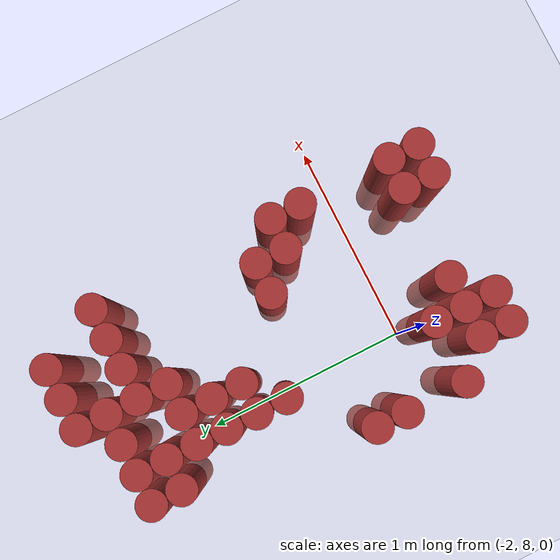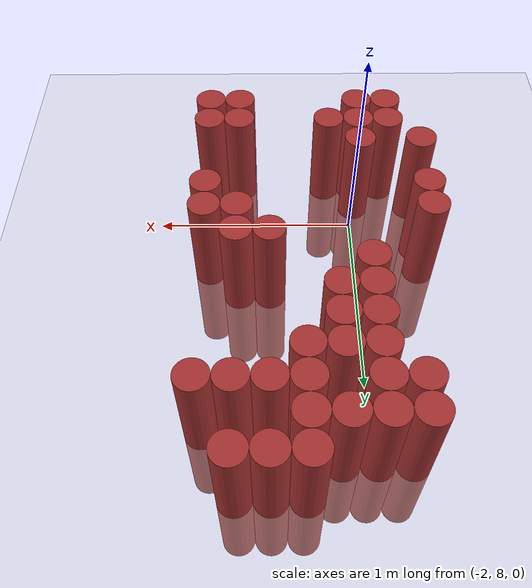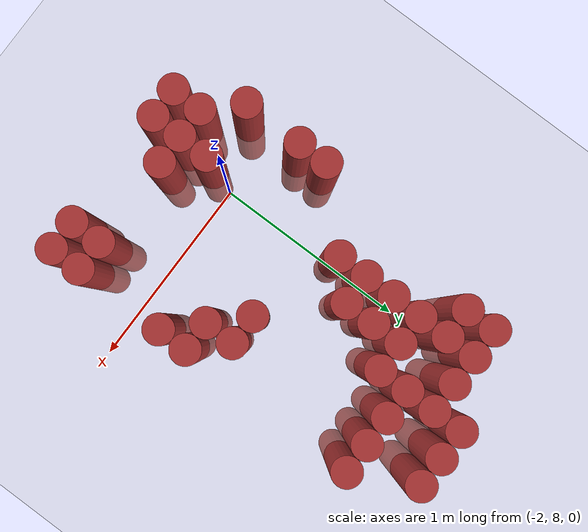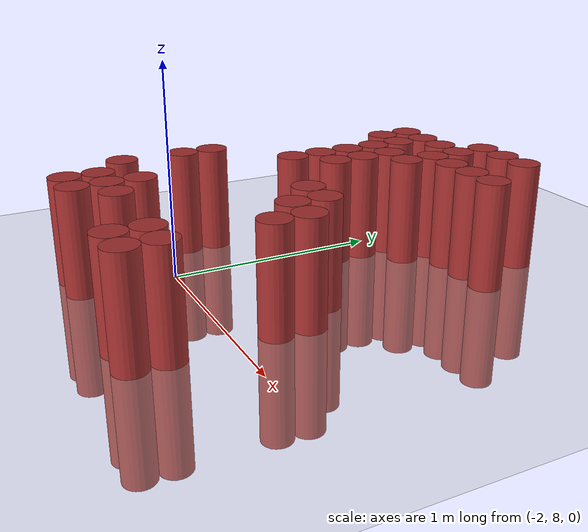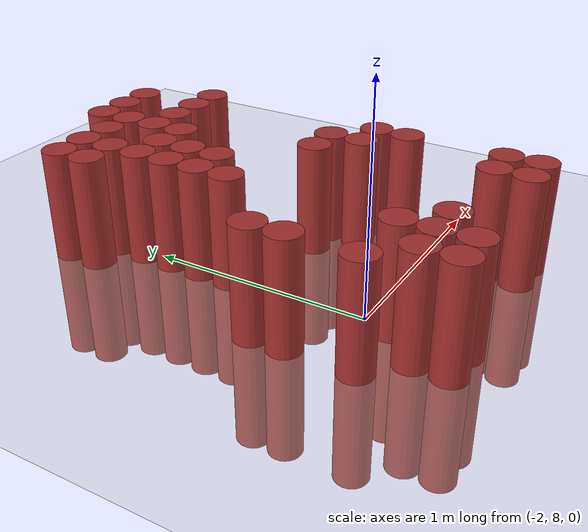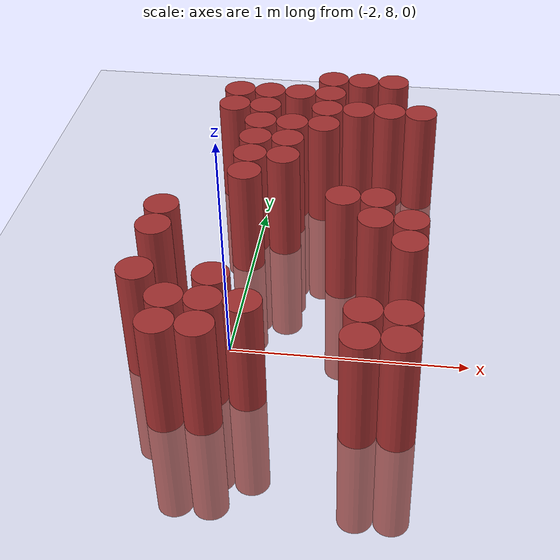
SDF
<sdf version="1.6">
 <world name="default">
  <model name="ground_plane">
   <static>1</static>
   <link name="link">
    <collision name="collision">
     <geometry><plane><normal>0 0 1</normal><size>100 100</size></plane></geometry>
     <surface><friction><ode><mu>100</mu><mu2>50</mu2></ode></friction></surface>
    </collision>
    <visual name="visual">
     <cast_shadows>0</cast_shadows>
     <geometry><plane><normal>0 0 1</normal><size>100 100</size></plane></geometry>
     <material>
      <script><uri>file://media/materials/scripts/gazebo.material</uri><name>Gazebo/Grey</name></script>
     </material>
    </visual>
   </link>
  </model>
  <model name="unit_cylinder_196">
   <static>1</static>
   <pose>-2.325000 7.875000 0.000000 0.000000 0.000000 0.000000</pose>
   <link name="link">
    <inertial>
     <mass>1</mass>
     <inertia><ixx>0.145833</ixx><ixy>0</ixy><ixz>0</ixz><iyy>0.145833</iyy><iyz>0</iyz><izz>0.125</izz></inertia>
    </inertial>
    <collision name="collision">
     <geometry><cylinder><radius>0.075000</radius><length>1</length></cylinder></geometry>
    </collision>
    <visual name="visual">
     <geometry><cylinder><radius>0.075000</radius><length>1</length></cylinder></geometry>
     <material>
      <ambient>0.648000 0.192000 0.192000 1</ambient>
      <diffuse>0.648000 0.192000 0.192000 1</diffuse>
     </material>
     <material>
      <script><name>Gazebo/Grey</name><uri>file://media/materials/scripts/gazebo.material</uri></script>
     </material>
    </visual>
    <sensor name="sensor_contact" type="contact"><contact><collision>collision</collision></contact></sensor>
   </link>
   <plugin filename="gz-sim-touchplugin-system" name="gz::sim::systems::TouchPlugin">
    <target>robot</target>
    <namespace>robot</namespace>
    <time>0.001</time>
    <enabled>true</enabled>
   </plugin>
  </model>
  <model name="unit_cylinder_197">
   <static>1</static>
   <pose>-2.325000 8.175000 0.000000 0.000000 0.000000 0.000000</pose>
   <link name="link">
    <inertial>
     <mass>1</mass>
     <inertia><ixx>0.145833</ixx><ixy>0</ixy><ixz>0</ixz><iyy>0.145833</iyy><iyz>0</iyz><izz>0.125</izz></inertia>
    </inertial>
    <collision name="collision">
     <geometry><cylinder><radius>0.075000</radius><length>1</length></cylinder></geometry>
    </collision>
    <visual name="visual">
     <geometry><cylinder><radius>0.075000</radius><length>1</length></cylinder></geometry>
     <material>
      <ambient>0.648000 0.192000 0.192000 1</ambient>
      <diffuse>0.648000 0.192000 0.192000 1</diffuse>
     </material>
     <material>
      <script><name>Gazebo/Grey</name><uri>file://media/materials/scripts/gazebo.material</uri></script>
     </material>
    </visual>
    <sensor name="sensor_contact" type="contact"><contact><collision>collision</collision></contact></sensor>
   </link>
   <plugin filename="gz-sim-touchplugin-system" name="gz::sim::systems::TouchPlugin">
    <target>robot</target>
    <namespace>robot</namespace>
    <time>0.001</time>
    <enabled>true</enabled>
   </plugin>
  </model>
  <model name="unit_cylinder_198">
   <static>1</static>
   <pose>-2.325000 8.325000 0.000000 0.000000 0.000000 0.000000</pose>
   <link name="link">
    <inertial>
     <mass>1</mass>
     <inertia><ixx>0.145833</ixx><ixy>0</ixy><ixz>0</ixz><iyy>0.145833</iyy><iyz>0</iyz><izz>0.125</izz></inertia>
    </inertial>
    <collision name="collision">
     <geometry><cylinder><radius>0.075000</radius><length>1</length></cylinder></geometry>
    </collision>
    <visual name="visual">
     <geometry><cylinder><radius>0.075000</radius><length>1</length></cylinder></geometry>
     <material>
      <ambient>0.648000 0.192000 0.192000 1</ambient>
      <diffuse>0.648000 0.192000 0.192000 1</diffuse>
     </material>
     <material>
      <script><name>Gazebo/Grey</name><uri>file://media/materials/scripts/gazebo.material</uri></script>
     </material>
    </visual>
    <sensor name="sensor_contact" type="contact"><contact><collision>collision</collision></contact></sensor>
   </link>
   <plugin filename="gz-sim-touchplugin-system" name="gz::sim::systems::TouchPlugin">
    <target>robot</target>
    <namespace>robot</namespace>
    <time>0.001</time>
    <enabled>true</enabled>
   </plugin>
  </model>
  <model name="unit_cylinder_204">
   <static>1</static>
   <pose>-2.175000 7.575000 0.000000 0.000000 0.000000 0.000000</pose>
   <link name="link">
    <inertial>
     <mass>1</mass>
     <inertia><ixx>0.145833</ixx><ixy>0</ixy><ixz>0</ixz><iyy>0.145833</iyy><iyz>0</iyz><izz>0.125</izz></inertia>
    </inertial>
    <collision name="collision">
     <geometry><cylinder><radius>0.075000</radius><length>1</length></cylinder></geometry>
    </collision>
    <visual name="visual">
     <geometry><cylinder><radius>0.075000</radius><length>1</length></cylinder></geometry>
     <material>
      <ambient>0.648000 0.192000 0.192000 1</ambient>
      <diffuse>0.648000 0.192000 0.192000 1</diffuse>
     </material>
     <material>
      <script><name>Gazebo/Grey</name><uri>file://media/materials/scripts/gazebo.material</uri></script>
     </material>
    </visual>
    <sensor name="sensor_contact" type="contact"><contact><collision>collision</collision></contact></sensor>
   </link>
   <plugin filename="gz-sim-touchplugin-system" name="gz::sim::systems::TouchPlugin">
    <target>robot</target>
    <namespace>robot</namespace>
    <time>0.001</time>
    <enabled>true</enabled>
   </plugin>
  </model>
  <model name="unit_cylinder_205">
   <static>1</static>
   <pose>-2.175000 7.725000 0.000000 0.000000 0.000000 0.000000</pose>
   <link name="link">
    <inertial>
     <mass>1</mass>
     <inertia><ixx>0.145833</ixx><ixy>0</ixy><ixz>0</ixz><iyy>0.145833</iyy><iyz>0</iyz><izz>0.125</izz></inertia>
    </inertial>
    <collision name="collision">
     <geometry><cylinder><radius>0.075000</radius><length>1</length></cylinder></geometry>
    </collision>
    <visual name="visual">
     <geometry><cylinder><radius>0.075000</radius><length>1</length></cylinder></geometry>
     <material>
      <ambient>0.648000 0.192000 0.192000 1</ambient>
      <diffuse>0.648000 0.192000 0.192000 1</diffuse>
     </material>
     <material>
      <script><name>Gazebo/Grey</name><uri>file://media/materials/scripts/gazebo.material</uri></script>
     </material>
    </visual>
    <sensor name="sensor_contact" type="contact"><contact><collision>collision</collision></contact></sensor>
   </link>
   <plugin filename="gz-sim-touchplugin-system" name="gz::sim::systems::TouchPlugin">
    <target>robot</target>
    <namespace>robot</namespace>
    <time>0.001</time>
    <enabled>true</enabled>
   </plugin>
  </model>
  <model name="unit_cylinder_206">
   <static>1</static>
   <pose>-2.175000 9.225000 0.000000 0.000000 0.000000 0.000000</pose>
   <link name="link">
    <inertial>
     <mass>1</mass>
     <inertia><ixx>0.145833</ixx><ixy>0</ixy><ixz>0</ixz><iyy>0.145833</iyy><iyz>0</iyz><izz>0.125</izz></inertia>
    </inertial>
    <collision name="collision">
     <geometry><cylinder><radius>0.075000</radius><length>1</length></cylinder></geometry>
    </collision>
    <visual name="visual">
     <geometry><cylinder><radius>0.075000</radius><length>1</length></cylinder></geometry>
     <material>
      <ambient>0.648000 0.192000 0.192000 1</ambient>
      <diffuse>0.648000 0.192000 0.192000 1</diffuse>
     </material>
     <material>
      <script><name>Gazebo/Grey</name><uri>file://media/materials/scripts/gazebo.material</uri></script>
     </material>
    </visual>
    <sensor name="sensor_contact" type="contact"><contact><collision>collision</collision></contact></sensor>
   </link>
   <plugin filename="gz-sim-touchplugin-system" name="gz::sim::systems::TouchPlugin">
    <target>robot</target>
    <namespace>robot</namespace>
    <time>0.001</time>
    <enabled>true</enabled>
   </plugin>
  </model>
  <model name="unit_cylinder_207">
   <static>1</static>
   <pose>-2.175000 9.375000 0.000000 0.000000 0.000000 0.000000</pose>
   <link name="link">
    <inertial>
     <mass>1</mass>
     <inertia><ixx>0.145833</ixx><ixy>0</ixy><ixz>0</ixz><iyy>0.145833</iyy><iyz>0</iyz><izz>0.125</izz></inertia>
    </inertial>
    <collision name="collision">
     <geometry><cylinder><radius>0.075000</radius><length>1</length></cylinder></geometry>
    </collision>
    <visual name="visual">
     <geometry><cylinder><radius>0.075000</radius><length>1</length></cylinder></geometry>
     <material>
      <ambient>0.648000 0.192000 0.192000 1</ambient>
      <diffuse>0.648000 0.192000 0.192000 1</diffuse>
     </material>
     <material>
      <script><name>Gazebo/Grey</name><uri>file://media/materials/scripts/gazebo.material</uri></script>
     </material>
    </visual>
    <sensor name="sensor_contact" type="contact"><contact><collision>collision</collision></contact></sensor>
   </link>
   <plugin filename="gz-sim-touchplugin-system" name="gz::sim::systems::TouchPlugin">
    <target>robot</target>
    <namespace>robot</namespace>
    <time>0.001</time>
    <enabled>true</enabled>
   </plugin>
  </model>
  <model name="unit_cylinder_211">
   <static>1</static>
   <pose>-2.025000 7.575000 0.000000 0.000000 0.000000 0.000000</pose>
   <link name="link">
    <inertial>
     <mass>1</mass>
     <inertia><ixx>0.145833</ixx><ixy>0</ixy><ixz>0</ixz><iyy>0.145833</iyy><iyz>0</iyz><izz>0.125</izz></inertia>
    </inertial>
    <collision name="collision">
     <geometry><cylinder><radius>0.075000</radius><length>1</length></cylinder></geometry>
    </collision>
    <visual name="visual">
     <geometry><cylinder><radius>0.075000</radius><length>1</length></cylinder></geometry>
     <material>
      <ambient>0.648000 0.192000 0.192000 1</ambient>
      <diffuse>0.648000 0.192000 0.192000 1</diffuse>
     </material>
     <material>
      <script><name>Gazebo/Grey</name><uri>file://media/materials/scripts/gazebo.material</uri></script>
     </material>
    </visual>
    <sensor name="sensor_contact" type="contact"><contact><collision>collision</collision></contact></sensor>
   </link>
   <plugin filename="gz-sim-touchplugin-system" name="gz::sim::systems::TouchPlugin">
    <target>robot</target>
    <namespace>robot</namespace>
    <time>0.001</time>
    <enabled>true</enabled>
   </plugin>
  </model>
  <model name="unit_cylinder_212">
   <static>1</static>
   <pose>-2.025000 7.725000 0.000000 0.000000 0.000000 0.000000</pose>
   <link name="link">
    <inertial>
     <mass>1</mass>
     <inertia><ixx>0.145833</ixx><ixy>0</ixy><ixz>0</ixz><iyy>0.145833</iyy><iyz>0</iyz><izz>0.125</izz></inertia>
    </inertial>
    <collision name="collision">
     <geometry><cylinder><radius>0.075000</radius><length>1</length></cylinder></geometry>
    </collision>
    <visual name="visual">
     <geometry><cylinder><radius>0.075000</radius><length>1</length></cylinder></geometry>
     <material>
      <ambient>0.648000 0.192000 0.192000 1</ambient>
      <diffuse>0.648000 0.192000 0.192000 1</diffuse>
     </material>
     <material>
      <script><name>Gazebo/Grey</name><uri>file://media/materials/scripts/gazebo.material</uri></script>
     </material>
    </visual>
    <sensor name="sensor_contact" type="contact"><contact><collision>collision</collision></contact></sensor>
   </link>
   <plugin filename="gz-sim-touchplugin-system" name="gz::sim::systems::TouchPlugin">
    <target>robot</target>
    <namespace>robot</namespace>
    <time>0.001</time>
    <enabled>true</enabled>
   </plugin>
  </model>
  <model name="unit_cylinder_213">
   <static>1</static>
   <pose>-2.025000 7.875000 0.000000 0.000000 0.000000 0.000000</pose>
   <link name="link">
    <inertial>
     <mass>1</mass>
     <inertia><ixx>0.145833</ixx><ixy>0</ixy><ixz>0</ixz><iyy>0.145833</iyy><iyz>0</iyz><izz>0.125</izz></inertia>
    </inertial>
    <collision name="collision">
     <geometry><cylinder><radius>0.075000</radius><length>1</length></cylinder></geometry>
    </collision>
    <visual name="visual">
     <geometry><cylinder><radius>0.075000</radius><length>1</length></cylinder></geometry>
     <material>
      <ambient>0.648000 0.192000 0.192000 1</ambient>
      <diffuse>0.648000 0.192000 0.192000 1</diffuse>
     </material>
     <material>
      <script><name>Gazebo/Grey</name><uri>file://media/materials/scripts/gazebo.material</uri></script>
     </material>
    </visual>
    <sensor name="sensor_contact" type="contact"><contact><collision>collision</collision></contact></sensor>
   </link>
   <plugin filename="gz-sim-touchplugin-system" name="gz::sim::systems::TouchPlugin">
    <target>robot</target>
    <namespace>robot</namespace>
    <time>0.001</time>
    <enabled>true</enabled>
   </plugin>
  </model>
  <model name="unit_cylinder_214">
   <static>1</static>
   <pose>-2.025000 8.625000 0.000000 0.000000 0.000000 0.000000</pose>
   <link name="link">
    <inertial>
     <mass>1</mass>
     <inertia><ixx>0.145833</ixx><ixy>0</ixy><ixz>0</ixz><iyy>0.145833</iyy><iyz>0</iyz><izz>0.125</izz></inertia>
    </inertial>
    <collision name="collision">
     <geometry><cylinder><radius>0.075000</radius><length>1</length></cylinder></geometry>
    </collision>
    <visual name="visual">
     <geometry><cylinder><radius>0.075000</radius><length>1</length></cylinder></geometry>
     <material>
      <ambient>0.648000 0.192000 0.192000 1</ambient>
      <diffuse>0.648000 0.192000 0.192000 1</diffuse>
     </material>
     <material>
      <script><name>Gazebo/Grey</name><uri>file://media/materials/scripts/gazebo.material</uri></script>
     </material>
    </visual>
    <sensor name="sensor_contact" type="contact"><contact><collision>collision</collision></contact></sensor>
   </link>
   <plugin filename="gz-sim-touchplugin-system" name="gz::sim::systems::TouchPlugin">
    <target>robot</target>
    <namespace>robot</namespace>
    <time>0.001</time>
    <enabled>true</enabled>
   </plugin>
  </model>
  <model name="unit_cylinder_215">
   <static>1</static>
   <pose>-2.025000 8.775000 0.000000 0.000000 0.000000 0.000000</pose>
   <link name="link">
    <inertial>
     <mass>1</mass>
     <inertia><ixx>0.145833</ixx><ixy>0</ixy><ixz>0</ixz><iyy>0.145833</iyy><iyz>0</iyz><izz>0.125</izz></inertia>
    </inertial>
    <collision name="collision">
     <geometry><cylinder><radius>0.075000</radius><length>1</length></cylinder></geometry>
    </collision>
    <visual name="visual">
     <geometry><cylinder><radius>0.075000</radius><length>1</length></cylinder></geometry>
     <material>
      <ambient>0.648000 0.192000 0.192000 1</ambient>
      <diffuse>0.648000 0.192000 0.192000 1</diffuse>
     </material>
     <material>
      <script><name>Gazebo/Grey</name><uri>file://media/materials/scripts/gazebo.material</uri></script>
     </material>
    </visual>
    <sensor name="sensor_contact" type="contact"><contact><collision>collision</collision></contact></sensor>
   </link>
   <plugin filename="gz-sim-touchplugin-system" name="gz::sim::systems::TouchPlugin">
    <target>robot</target>
    <namespace>robot</namespace>
    <time>0.001</time>
    <enabled>true</enabled>
   </plugin>
  </model>
  <model name="unit_cylinder_216">
   <static>1</static>
   <pose>-2.025000 8.925000 0.000000 0.000000 0.000000 0.000000</pose>
   <link name="link">
    <inertial>
     <mass>1</mass>
     <inertia><ixx>0.145833</ixx><ixy>0</ixy><ixz>0</ixz><iyy>0.145833</iyy><iyz>0</iyz><izz>0.125</izz></inertia>
    </inertial>
    <collision name="collision">
     <geometry><cylinder><radius>0.075000</radius><length>1</length></cylinder></geometry>
    </collision>
    <visual name="visual">
     <geometry><cylinder><radius>0.075000</radius><length>1</length></cylinder></geometry>
     <material>
      <ambient>0.648000 0.192000 0.192000 1</ambient>
      <diffuse>0.648000 0.192000 0.192000 1</diffuse>
     </material>
     <material>
      <script><name>Gazebo/Grey</name><uri>file://media/materials/scripts/gazebo.material</uri></script>
     </material>
    </visual>
    <sensor name="sensor_contact" type="contact"><contact><collision>collision</collision></contact></sensor>
   </link>
   <plugin filename="gz-sim-touchplugin-system" name="gz::sim::systems::TouchPlugin">
    <target>robot</target>
    <namespace>robot</namespace>
    <time>0.001</time>
    <enabled>true</enabled>
   </plugin>
  </model>
  <model name="unit_cylinder_217">
   <static>1</static>
   <pose>-2.025000 9.075000 0.000000 0.000000 0.000000 0.000000</pose>
   <link name="link">
    <inertial>
     <mass>1</mass>
     <inertia><ixx>0.145833</ixx><ixy>0</ixy><ixz>0</ixz><iyy>0.145833</iyy><iyz>0</iyz><izz>0.125</izz></inertia>
    </inertial>
    <collision name="collision">
     <geometry><cylinder><radius>0.075000</radius><length>1</length></cylinder></geometry>
    </collision>
    <visual name="visual">
     <geometry><cylinder><radius>0.075000</radius><length>1</length></cylinder></geometry>
     <material>
      <ambient>0.648000 0.192000 0.192000 1</ambient>
      <diffuse>0.648000 0.192000 0.192000 1</diffuse>
     </material>
     <material>
      <script><name>Gazebo/Grey</name><uri>file://media/materials/scripts/gazebo.material</uri></script>
     </material>
    </visual>
    <sensor name="sensor_contact" type="contact"><contact><collision>collision</collision></contact></sensor>
   </link>
   <plugin filename="gz-sim-touchplugin-system" name="gz::sim::systems::TouchPlugin">
    <target>robot</target>
    <namespace>robot</namespace>
    <time>0.001</time>
    <enabled>true</enabled>
   </plugin>
  </model>
  <model name="unit_cylinder_218">
   <static>1</static>
   <pose>-2.025000 9.225000 0.000000 0.000000 0.000000 0.000000</pose>
   <link name="link">
    <inertial>
     <mass>1</mass>
     <inertia><ixx>0.145833</ixx><ixy>0</ixy><ixz>0</ixz><iyy>0.145833</iyy><iyz>0</iyz><izz>0.125</izz></inertia>
    </inertial>
    <collision name="collision">
     <geometry><cylinder><radius>0.075000</radius><length>1</length></cylinder></geometry>
    </collision>
    <visual name="visual">
     <geometry><cylinder><radius>0.075000</radius><length>1</length></cylinder></geometry>
     <material>
      <ambient>0.648000 0.192000 0.192000 1</ambient>
      <diffuse>0.648000 0.192000 0.192000 1</diffuse>
     </material>
     <material>
      <script><name>Gazebo/Grey</name><uri>file://media/materials/scripts/gazebo.material</uri></script>
     </material>
    </visual>
    <sensor name="sensor_contact" type="contact"><contact><collision>collision</collision></contact></sensor>
   </link>
   <plugin filename="gz-sim-touchplugin-system" name="gz::sim::systems::TouchPlugin">
    <target>robot</target>
    <namespace>robot</namespace>
    <time>0.001</time>
    <enabled>true</enabled>
   </plugin>
  </model>
  <model name="unit_cylinder_219">
   <static>1</static>
   <pose>-2.025000 9.375000 0.000000 0.000000 0.000000 0.000000</pose>
   <link name="link">
    <inertial>
     <mass>1</mass>
     <inertia><ixx>0.145833</ixx><ixy>0</ixy><ixz>0</ixz><iyy>0.145833</iyy><iyz>0</iyz><izz>0.125</izz></inertia>
    </inertial>
    <collision name="collision">
     <geometry><cylinder><radius>0.075000</radius><length>1</length></cylinder></geometry>
    </collision>
    <visual name="visual">
     <geometry><cylinder><radius>0.075000</radius><length>1</length></cylinder></geometry>
     <material>
      <ambient>0.648000 0.192000 0.192000 1</ambient>
      <diffuse>0.648000 0.192000 0.192000 1</diffuse>
     </material>
     <material>
      <script><name>Gazebo/Grey</name><uri>file://media/materials/scripts/gazebo.material</uri></script>
     </material>
    </visual>
    <sensor name="sensor_contact" type="contact"><contact><collision>collision</collision></contact></sensor>
   </link>
   <plugin filename="gz-sim-touchplugin-system" name="gz::sim::systems::TouchPlugin">
    <target>robot</target>
    <namespace>robot</namespace>
    <time>0.001</time>
    <enabled>true</enabled>
   </plugin>
  </model>
  <model name="unit_cylinder_223">
   <static>1</static>
   <pose>-1.875000 7.725000 0.000000 0.000000 0.000000 0.000000</pose>
   <link name="link">
    <inertial>
     <mass>1</mass>
     <inertia><ixx>0.145833</ixx><ixy>0</ixy><ixz>0</ixz><iyy>0.145833</iyy><iyz>0</iyz><izz>0.125</izz></inertia>
    </inertial>
    <collision name="collision">
     <geometry><cylinder><radius>0.075000</radius><length>1</length></cylinder></geometry>
    </collision>
    <visual name="visual">
     <geometry><cylinder><radius>0.075000</radius><length>1</length></cylinder></geometry>
     <material>
      <ambient>0.648000 0.192000 0.192000 1</ambient>
      <diffuse>0.648000 0.192000 0.192000 1</diffuse>
     </material>
     <material>
      <script><name>Gazebo/Grey</name><uri>file://media/materials/scripts/gazebo.material</uri></script>
     </material>
    </visual>
    <sensor name="sensor_contact" type="contact"><contact><collision>collision</collision></contact></sensor>
   </link>
   <plugin filename="gz-sim-touchplugin-system" name="gz::sim::systems::TouchPlugin">
    <target>robot</target>
    <namespace>robot</namespace>
    <time>0.001</time>
    <enabled>true</enabled>
   </plugin>
  </model>
  <model name="unit_cylinder_224">
   <static>1</static>
   <pose>-1.875000 8.775000 0.000000 0.000000 0.000000 0.000000</pose>
   <link name="link">
    <inertial>
     <mass>1</mass>
     <inertia><ixx>0.145833</ixx><ixy>0</ixy><ixz>0</ixz><iyy>0.145833</iyy><iyz>0</iyz><izz>0.125</izz></inertia>
    </inertial>
    <collision name="collision">
     <geometry><cylinder><radius>0.075000</radius><length>1</length></cylinder></geometry>
    </collision>
    <visual name="visual">
     <geometry><cylinder><radius>0.075000</radius><length>1</length></cylinder></geometry>
     <material>
      <ambient>0.648000 0.192000 0.192000 1</ambient>
      <diffuse>0.648000 0.192000 0.192000 1</diffuse>
     </material>
     <material>
      <script><name>Gazebo/Grey</name><uri>file://media/materials/scripts/gazebo.material</uri></script>
     </material>
    </visual>
    <sensor name="sensor_contact" type="contact"><contact><collision>collision</collision></contact></sensor>
   </link>
   <plugin filename="gz-sim-touchplugin-system" name="gz::sim::systems::TouchPlugin">
    <target>robot</target>
    <namespace>robot</namespace>
    <time>0.001</time>
    <enabled>true</enabled>
   </plugin>
  </model>
  <model name="unit_cylinder_225">
   <static>1</static>
   <pose>-1.875000 8.925000 0.000000 0.000000 0.000000 0.000000</pose>
   <link name="link">
    <inertial>
     <mass>1</mass>
     <inertia><ixx>0.145833</ixx><ixy>0</ixy><ixz>0</ixz><iyy>0.145833</iyy><iyz>0</iyz><izz>0.125</izz></inertia>
    </inertial>
    <collision name="collision">
     <geometry><cylinder><radius>0.075000</radius><length>1</length></cylinder></geometry>
    </collision>
    <visual name="visual">
     <geometry><cylinder><radius>0.075000</radius><length>1</length></cylinder></geometry>
     <material>
      <ambient>0.648000 0.192000 0.192000 1</ambient>
      <diffuse>0.648000 0.192000 0.192000 1</diffuse>
     </material>
     <material>
      <script><name>Gazebo/Grey</name><uri>file://media/materials/scripts/gazebo.material</uri></script>
     </material>
    </visual>
    <sensor name="sensor_contact" type="contact"><contact><collision>collision</collision></contact></sensor>
   </link>
   <plugin filename="gz-sim-touchplugin-system" name="gz::sim::systems::TouchPlugin">
    <target>robot</target>
    <namespace>robot</namespace>
    <time>0.001</time>
    <enabled>true</enabled>
   </plugin>
  </model>
  <model name="unit_cylinder_226">
   <static>1</static>
   <pose>-1.875000 9.075000 0.000000 0.000000 0.000000 0.000000</pose>
   <link name="link">
    <inertial>
     <mass>1</mass>
     <inertia><ixx>0.145833</ixx><ixy>0</ixy><ixz>0</ixz><iyy>0.145833</iyy><iyz>0</iyz><izz>0.125</izz></inertia>
    </inertial>
    <collision name="collision">
     <geometry><cylinder><radius>0.075000</radius><length>1</length></cylinder></geometry>
    </collision>
    <visual name="visual">
     <geometry><cylinder><radius>0.075000</radius><length>1</length></cylinder></geometry>
     <material>
      <ambient>0.648000 0.192000 0.192000 1</ambient>
      <diffuse>0.648000 0.192000 0.192000 1</diffuse>
     </material>
     <material>
      <script><name>Gazebo/Grey</name><uri>file://media/materials/scripts/gazebo.material</uri></script>
     </material>
    </visual>
    <sensor name="sensor_contact" type="contact"><contact><collision>collision</collision></contact></sensor>
   </link>
   <plugin filename="gz-sim-touchplugin-system" name="gz::sim::systems::TouchPlugin">
    <target>robot</target>
    <namespace>robot</namespace>
    <time>0.001</time>
    <enabled>true</enabled>
   </plugin>
  </model>
  <model name="unit_cylinder_227">
   <static>1</static>
   <pose>-1.875000 9.375000 0.000000 0.000000 0.000000 0.000000</pose>
   <link name="link">
    <inertial>
     <mass>1</mass>
     <inertia><ixx>0.145833</ixx><ixy>0</ixy><ixz>0</ixz><iyy>0.145833</iyy><iyz>0</iyz><izz>0.125</izz></inertia>
    </inertial>
    <collision name="collision">
     <geometry><cylinder><radius>0.075000</radius><length>1</length></cylinder></geometry>
    </collision>
    <visual name="visual">
     <geometry><cylinder><radius>0.075000</radius><length>1</length></cylinder></geometry>
     <material>
      <ambient>0.648000 0.192000 0.192000 1</ambient>
      <diffuse>0.648000 0.192000 0.192000 1</diffuse>
     </material>
     <material>
      <script><name>Gazebo/Grey</name><uri>file://media/materials/scripts/gazebo.material</uri></script>
     </material>
    </visual>
    <sensor name="sensor_contact" type="contact"><contact><collision>collision</collision></contact></sensor>
   </link>
   <plugin filename="gz-sim-touchplugin-system" name="gz::sim::systems::TouchPlugin">
    <target>robot</target>
    <namespace>robot</namespace>
    <time>0.001</time>
    <enabled>true</enabled>
   </plugin>
  </model>
  <model name="unit_cylinder_233">
   <static>1</static>
   <pose>-1.725000 9.075000 0.000000 0.000000 0.000000 0.000000</pose>
   <link name="link">
    <inertial>
     <mass>1</mass>
     <inertia><ixx>0.145833</ixx><ixy>0</ixy><ixz>0</ixz><iyy>0.145833</iyy><iyz>0</iyz><izz>0.125</izz></inertia>
    </inertial>
    <collision name="collision">
     <geometry><cylinder><radius>0.075000</radius><length>1</length></cylinder></geometry>
    </collision>
    <visual name="visual">
     <geometry><cylinder><radius>0.075000</radius><length>1</length></cylinder></geometry>
     <material>
      <ambient>0.648000 0.192000 0.192000 1</ambient>
      <diffuse>0.648000 0.192000 0.192000 1</diffuse>
     </material>
     <material>
      <script><name>Gazebo/Grey</name><uri>file://media/materials/scripts/gazebo.material</uri></script>
     </material>
    </visual>
    <sensor name="sensor_contact" type="contact"><contact><collision>collision</collision></contact></sensor>
   </link>
   <plugin filename="gz-sim-touchplugin-system" name="gz::sim::systems::TouchPlugin">
    <target>robot</target>
    <namespace>robot</namespace>
    <time>0.001</time>
    <enabled>true</enabled>
   </plugin>
  </model>
  <model name="unit_cylinder_234">
   <static>1</static>
   <pose>-1.725000 9.225000 0.000000 0.000000 0.000000 0.000000</pose>
   <link name="link">
    <inertial>
     <mass>1</mass>
     <inertia><ixx>0.145833</ixx><ixy>0</ixy><ixz>0</ixz><iyy>0.145833</iyy><iyz>0</iyz><izz>0.125</izz></inertia>
    </inertial>
    <collision name="collision">
     <geometry><cylinder><radius>0.075000</radius><length>1</length></cylinder></geometry>
    </collision>
    <visual name="visual">
     <geometry><cylinder><radius>0.075000</radius><length>1</length></cylinder></geometry>
     <material>
      <ambient>0.648000 0.192000 0.192000 1</ambient>
      <diffuse>0.648000 0.192000 0.192000 1</diffuse>
     </material>
     <material>
      <script><name>Gazebo/Grey</name><uri>file://media/materials/scripts/gazebo.material</uri></script>
     </material>
    </visual>
    <sensor name="sensor_contact" type="contact"><contact><collision>collision</collision></contact></sensor>
   </link>
   <plugin filename="gz-sim-touchplugin-system" name="gz::sim::systems::TouchPlugin">
    <target>robot</target>
    <namespace>robot</namespace>
    <time>0.001</time>
    <enabled>true</enabled>
   </plugin>
  </model>
  <model name="unit_cylinder_235">
   <static>1</static>
   <pose>-1.725000 9.375000 0.000000 0.000000 0.000000 0.000000</pose>
   <link name="link">
    <inertial>
     <mass>1</mass>
     <inertia><ixx>0.145833</ixx><ixy>0</ixy><ixz>0</ixz><iyy>0.145833</iyy><iyz>0</iyz><izz>0.125</izz></inertia>
    </inertial>
    <collision name="collision">
     <geometry><cylinder><radius>0.075000</radius><length>1</length></cylinder></geometry>
    </collision>
    <visual name="visual">
     <geometry><cylinder><radius>0.075000</radius><length>1</length></cylinder></geometry>
     <material>
      <ambient>0.648000 0.192000 0.192000 1</ambient>
      <diffuse>0.648000 0.192000 0.192000 1</diffuse>
     </material>
     <material>
      <script><name>Gazebo/Grey</name><uri>file://media/materials/scripts/gazebo.material</uri></script>
     </material>
    </visual>
    <sensor name="sensor_contact" type="contact"><contact><collision>collision</collision></contact></sensor>
   </link>
   <plugin filename="gz-sim-touchplugin-system" name="gz::sim::systems::TouchPlugin">
    <target>robot</target>
    <namespace>robot</namespace>
    <time>0.001</time>
    <enabled>true</enabled>
   </plugin>
  </model>
  <model name="unit_cylinder_236">
   <static>1</static>
   <pose>-1.725000 9.525000 0.000000 0.000000 0.000000 0.000000</pose>
   <link name="link">
    <inertial>
     <mass>1</mass>
     <inertia><ixx>0.145833</ixx><ixy>0</ixy><ixz>0</ixz><iyy>0.145833</iyy><iyz>0</iyz><izz>0.125</izz></inertia>
    </inertial>
    <collision name="collision">
     <geometry><cylinder><radius>0.075000</radius><length>1</length></cylinder></geometry>
    </collision>
    <visual name="visual">
     <geometry><cylinder><radius>0.075000</radius><length>1</length></cylinder></geometry>
     <material>
      <ambient>0.648000 0.192000 0.192000 1</ambient>
      <diffuse>0.648000 0.192000 0.192000 1</diffuse>
     </material>
     <material>
      <script><name>Gazebo/Grey</name><uri>file://media/materials/scripts/gazebo.material</uri></script>
     </material>
    </visual>
    <sensor name="sensor_contact" type="contact"><contact><collision>collision</collision></contact></sensor>
   </link>
   <plugin filename="gz-sim-touchplugin-system" name="gz::sim::systems::TouchPlugin">
    <target>robot</target>
    <namespace>robot</namespace>
    <time>0.001</time>
    <enabled>true</enabled>
   </plugin>
  </model>
  <model name="unit_cylinder_240">
   <static>1</static>
   <pose>-1.575000 8.475000 0.000000 0.000000 0.000000 0.000000</pose>
   <link name="link">
    <inertial>
     <mass>1</mass>
     <inertia><ixx>0.145833</ixx><ixy>0</ixy><ixz>0</ixz><iyy>0.145833</iyy><iyz>0</iyz><izz>0.125</izz></inertia>
    </inertial>
    <collision name="collision">
     <geometry><cylinder><radius>0.075000</radius><length>1</length></cylinder></geometry>
    </collision>
    <visual name="visual">
     <geometry><cylinder><radius>0.075000</radius><length>1</length></cylinder></geometry>
     <material>
      <ambient>0.648000 0.192000 0.192000 1</ambient>
      <diffuse>0.648000 0.192000 0.192000 1</diffuse>
     </material>
     <material>
      <script><name>Gazebo/Grey</name><uri>file://media/materials/scripts/gazebo.material</uri></script>
     </material>
    </visual>
    <sensor name="sensor_contact" type="contact"><contact><collision>collision</collision></contact></sensor>
   </link>
   <plugin filename="gz-sim-touchplugin-system" name="gz::sim::systems::TouchPlugin">
    <target>robot</target>
    <namespace>robot</namespace>
    <time>0.001</time>
    <enabled>true</enabled>
   </plugin>
  </model>
  <model name="unit_cylinder_241">
   <static>1</static>
   <pose>-1.575000 9.225000 0.000000 0.000000 0.000000 0.000000</pose>
   <link name="link">
    <inertial>
     <mass>1</mass>
     <inertia><ixx>0.145833</ixx><ixy>0</ixy><ixz>0</ixz><iyy>0.145833</iyy><iyz>0</iyz><izz>0.125</izz></inertia>
    </inertial>
    <collision name="collision">
     <geometry><cylinder><radius>0.075000</radius><length>1</length></cylinder></geometry>
    </collision>
    <visual name="visual">
     <geometry><cylinder><radius>0.075000</radius><length>1</length></cylinder></geometry>
     <material>
      <ambient>0.648000 0.192000 0.192000 1</ambient>
      <diffuse>0.648000 0.192000 0.192000 1</diffuse>
     </material>
     <material>
      <script><name>Gazebo/Grey</name><uri>file://media/materials/scripts/gazebo.material</uri></script>
     </material>
    </visual>
    <sensor name="sensor_contact" type="contact"><contact><collision>collision</collision></contact></sensor>
   </link>
   <plugin filename="gz-sim-touchplugin-system" name="gz::sim::systems::TouchPlugin">
    <target>robot</target>
    <namespace>robot</namespace>
    <time>0.001</time>
    <enabled>true</enabled>
   </plugin>
  </model>
  <model name="unit_cylinder_242">
   <static>1</static>
   <pose>-1.575000 9.525000 0.000000 0.000000 0.000000 0.000000</pose>
   <link name="link">
    <inertial>
     <mass>1</mass>
     <inertia><ixx>0.145833</ixx><ixy>0</ixy><ixz>0</ixz><iyy>0.145833</iyy><iyz>0</iyz><izz>0.125</izz></inertia>
    </inertial>
    <collision name="collision">
     <geometry><cylinder><radius>0.075000</radius><length>1</length></cylinder></geometry>
    </collision>
    <visual name="visual">
     <geometry><cylinder><radius>0.075000</radius><length>1</length></cylinder></geometry>
     <material>
      <ambient>0.648000 0.192000 0.192000 1</ambient>
      <diffuse>0.648000 0.192000 0.192000 1</diffuse>
     </material>
     <material>
      <script><name>Gazebo/Grey</name><uri>file://media/materials/scripts/gazebo.material</uri></script>
     </material>
    </visual>
    <sensor name="sensor_contact" type="contact"><contact><collision>collision</collision></contact></sensor>
   </link>
   <plugin filename="gz-sim-touchplugin-system" name="gz::sim::systems::TouchPlugin">
    <target>robot</target>
    <namespace>robot</namespace>
    <time>0.001</time>
    <enabled>true</enabled>
   </plugin>
  </model>
  <model name="unit_cylinder_248">
   <static>1</static>
   <pose>-1.425000 7.575000 0.000000 0.000000 0.000000 0.000000</pose>
   <link name="link">
    <inertial>
     <mass>1</mass>
     <inertia><ixx>0.145833</ixx><ixy>0</ixy><ixz>0</ixz><iyy>0.145833</iyy><iyz>0</iyz><izz>0.125</izz></inertia>
    </inertial>
    <collision name="collision">
     <geometry><cylinder><radius>0.075000</radius><length>1</length></cylinder></geometry>
    </collision>
    <visual name="visual">
     <geometry><cylinder><radius>0.075000</radius><length>1</length></cylinder></geometry>
     <material>
      <ambient>0.648000 0.192000 0.192000 1</ambient>
      <diffuse>0.648000 0.192000 0.192000 1</diffuse>
     </material>
     <material>
      <script><name>Gazebo/Grey</name><uri>file://media/materials/scripts/gazebo.material</uri></script>
     </material>
    </visual>
    <sensor name="sensor_contact" type="contact"><contact><collision>collision</collision></contact></sensor>
   </link>
   <plugin filename="gz-sim-touchplugin-system" name="gz::sim::systems::TouchPlugin">
    <target>robot</target>
    <namespace>robot</namespace>
    <time>0.001</time>
    <enabled>true</enabled>
   </plugin>
  </model>
  <model name="unit_cylinder_249">
   <static>1</static>
   <pose>-1.425000 7.725000 0.000000 0.000000 0.000000 0.000000</pose>
   <link name="link">
    <inertial>
     <mass>1</mass>
     <inertia><ixx>0.145833</ixx><ixy>0</ixy><ixz>0</ixz><iyy>0.145833</iyy><iyz>0</iyz><izz>0.125</izz></inertia>
    </inertial>
    <collision name="collision">
     <geometry><cylinder><radius>0.075000</radius><length>1</length></cylinder></geometry>
    </collision>
    <visual name="visual">
     <geometry><cylinder><radius>0.075000</radius><length>1</length></cylinder></geometry>
     <material>
      <ambient>0.648000 0.192000 0.192000 1</ambient>
      <diffuse>0.648000 0.192000 0.192000 1</diffuse>
     </material>
     <material>
      <script><name>Gazebo/Grey</name><uri>file://media/materials/scripts/gazebo.material</uri></script>
     </material>
    </visual>
    <sensor name="sensor_contact" type="contact"><contact><collision>collision</collision></contact></sensor>
   </link>
   <plugin filename="gz-sim-touchplugin-system" name="gz::sim::systems::TouchPlugin">
    <target>robot</target>
    <namespace>robot</namespace>
    <time>0.001</time>
    <enabled>true</enabled>
   </plugin>
  </model>
  <model name="unit_cylinder_250">
   <static>1</static>
   <pose>-1.425000 8.325000 0.000000 0.000000 0.000000 0.000000</pose>
   <link name="link">
    <inertial>
     <mass>1</mass>
     <inertia><ixx>0.145833</ixx><ixy>0</ixy><ixz>0</ixz><iyy>0.145833</iyy><iyz>0</iyz><izz>0.125</izz></inertia>
    </inertial>
    <collision name="collision">
     <geometry><cylinder><radius>0.075000</radius><length>1</length></cylinder></geometry>
    </collision>
    <visual name="visual">
     <geometry><cylinder><radius>0.075000</radius><length>1</length></cylinder></geometry>
     <material>
      <ambient>0.648000 0.192000 0.192000 1</ambient>
      <diffuse>0.648000 0.192000 0.192000 1</diffuse>
     </material>
     <material>
      <script><name>Gazebo/Grey</name><uri>file://media/materials/scripts/gazebo.material</uri></script>
     </material>
    </visual>
    <sensor name="sensor_contact" type="contact"><contact><collision>collision</collision></contact></sensor>
   </link>
   <plugin filename="gz-sim-touchplugin-system" name="gz::sim::systems::TouchPlugin">
    <target>robot</target>
    <namespace>robot</namespace>
    <time>0.001</time>
    <enabled>true</enabled>
   </plugin>
  </model>
  <model name="unit_cylinder_251">
   <static>1</static>
   <pose>-1.425000 8.475000 0.000000 0.000000 0.000000 0.000000</pose>
   <link name="link">
    <inertial>
     <mass>1</mass>
     <inertia><ixx>0.145833</ixx><ixy>0</ixy><ixz>0</ixz><iyy>0.145833</iyy><iyz>0</iyz><izz>0.125</izz></inertia>
    </inertial>
    <collision name="collision">
     <geometry><cylinder><radius>0.075000</radius><length>1</length></cylinder></geometry>
    </collision>
    <visual name="visual">
     <geometry><cylinder><radius>0.075000</radius><length>1</length></cylinder></geometry>
     <material>
      <ambient>0.648000 0.192000 0.192000 1</ambient>
      <diffuse>0.648000 0.192000 0.192000 1</diffuse>
     </material>
     <material>
      <script><name>Gazebo/Grey</name><uri>file://media/materials/scripts/gazebo.material</uri></script>
     </material>
    </visual>
    <sensor name="sensor_contact" type="contact"><contact><collision>collision</collision></contact></sensor>
   </link>
   <plugin filename="gz-sim-touchplugin-system" name="gz::sim::systems::TouchPlugin">
    <target>robot</target>
    <namespace>robot</namespace>
    <time>0.001</time>
    <enabled>true</enabled>
   </plugin>
  </model>
  <model name="unit_cylinder_252">
   <static>1</static>
   <pose>-1.425000 9.225000 0.000000 0.000000 0.000000 0.000000</pose>
   <link name="link">
    <inertial>
     <mass>1</mass>
     <inertia><ixx>0.145833</ixx><ixy>0</ixy><ixz>0</ixz><iyy>0.145833</iyy><iyz>0</iyz><izz>0.125</izz></inertia>
    </inertial>
    <collision name="collision">
     <geometry><cylinder><radius>0.075000</radius><length>1</length></cylinder></geometry>
    </collision>
    <visual name="visual">
     <geometry><cylinder><radius>0.075000</radius><length>1</length></cylinder></geometry>
     <material>
      <ambient>0.648000 0.192000 0.192000 1</ambient>
      <diffuse>0.648000 0.192000 0.192000 1</diffuse>
     </material>
     <material>
      <script><name>Gazebo/Grey</name><uri>file://media/materials/scripts/gazebo.material</uri></script>
     </material>
    </visual>
    <sensor name="sensor_contact" type="contact"><contact><collision>collision</collision></contact></sensor>
   </link>
   <plugin filename="gz-sim-touchplugin-system" name="gz::sim::systems::TouchPlugin">
    <target>robot</target>
    <namespace>robot</namespace>
    <time>0.001</time>
    <enabled>true</enabled>
   </plugin>
  </model>
  <model name="unit_cylinder_253">
   <static>1</static>
   <pose>-1.425000 9.525000 0.000000 0.000000 0.000000 0.000000</pose>
   <link name="link">
    <inertial>
     <mass>1</mass>
     <inertia><ixx>0.145833</ixx><ixy>0</ixy><ixz>0</ixz><iyy>0.145833</iyy><iyz>0</iyz><izz>0.125</izz></inertia>
    </inertial>
    <collision name="collision">
     <geometry><cylinder><radius>0.075000</radius><length>1</length></cylinder></geometry>
    </collision>
    <visual name="visual">
     <geometry><cylinder><radius>0.075000</radius><length>1</length></cylinder></geometry>
     <material>
      <ambient>0.648000 0.192000 0.192000 1</ambient>
      <diffuse>0.648000 0.192000 0.192000 1</diffuse>
     </material>
     <material>
      <script><name>Gazebo/Grey</name><uri>file://media/materials/scripts/gazebo.material</uri></script>
     </material>
    </visual>
    <sensor name="sensor_contact" type="contact"><contact><collision>collision</collision></contact></sensor>
   </link>
   <plugin filename="gz-sim-touchplugin-system" name="gz::sim::systems::TouchPlugin">
    <target>robot</target>
    <namespace>robot</namespace>
    <time>0.001</time>
    <enabled>true</enabled>
   </plugin>
  </model>
  <model name="unit_cylinder_259">
   <static>1</static>
   <pose>-1.275000 7.575000 0.000000 0.000000 0.000000 0.000000</pose>
   <link name="link">
    <inertial>
     <mass>1</mass>
     <inertia><ixx>0.145833</ixx><ixy>0</ixy><ixz>0</ixz><iyy>0.145833</iyy><iyz>0</iyz><izz>0.125</izz></inertia>
    </inertial>
    <collision name="collision">
     <geometry><cylinder><radius>0.075000</radius><length>1</length></cylinder></geometry>
    </collision>
    <visual name="visual">
     <geometry><cylinder><radius>0.075000</radius><length>1</length></cylinder></geometry>
     <material>
      <ambient>0.648000 0.192000 0.192000 1</ambient>
      <diffuse>0.648000 0.192000 0.192000 1</diffuse>
     </material>
     <material>
      <script><name>Gazebo/Grey</name><uri>file://media/materials/scripts/gazebo.material</uri></script>
     </material>
    </visual>
    <sensor name="sensor_contact" type="contact"><contact><collision>collision</collision></contact></sensor>
   </link>
   <plugin filename="gz-sim-touchplugin-system" name="gz::sim::systems::TouchPlugin">
    <target>robot</target>
    <namespace>robot</namespace>
    <time>0.001</time>
    <enabled>true</enabled>
   </plugin>
  </model>
  <model name="unit_cylinder_260">
   <static>1</static>
   <pose>-1.275000 7.725000 0.000000 0.000000 0.000000 0.000000</pose>
   <link name="link">
    <inertial>
     <mass>1</mass>
     <inertia><ixx>0.145833</ixx><ixy>0</ixy><ixz>0</ixz><iyy>0.145833</iyy><iyz>0</iyz><izz>0.125</izz></inertia>
    </inertial>
    <collision name="collision">
     <geometry><cylinder><radius>0.075000</radius><length>1</length></cylinder></geometry>
    </collision>
    <visual name="visual">
     <geometry><cylinder><radius>0.075000</radius><length>1</length></cylinder></geometry>
     <material>
      <ambient>0.648000 0.192000 0.192000 1</ambient>
      <diffuse>0.648000 0.192000 0.192000 1</diffuse>
     </material>
     <material>
      <script><name>Gazebo/Grey</name><uri>file://media/materials/scripts/gazebo.material</uri></script>
     </material>
    </visual>
    <sensor name="sensor_contact" type="contact"><contact><collision>collision</collision></contact></sensor>
   </link>
   <plugin filename="gz-sim-touchplugin-system" name="gz::sim::systems::TouchPlugin">
    <target>robot</target>
    <namespace>robot</namespace>
    <time>0.001</time>
    <enabled>true</enabled>
   </plugin>
  </model>
  <model name="unit_cylinder_261">
   <static>1</static>
   <pose>-1.275000 8.175000 0.000000 0.000000 0.000000 0.000000</pose>
   <link name="link">
    <inertial>
     <mass>1</mass>
     <inertia><ixx>0.145833</ixx><ixy>0</ixy><ixz>0</ixz><iyy>0.145833</iyy><iyz>0</iyz><izz>0.125</izz></inertia>
    </inertial>
    <collision name="collision">
     <geometry><cylinder><radius>0.075000</radius><length>1</length></cylinder></geometry>
    </collision>
    <visual name="visual">
     <geometry><cylinder><radius>0.075000</radius><length>1</length></cylinder></geometry>
     <material>
      <ambient>0.648000 0.192000 0.192000 1</ambient>
      <diffuse>0.648000 0.192000 0.192000 1</diffuse>
     </material>
     <material>
      <script><name>Gazebo/Grey</name><uri>file://media/materials/scripts/gazebo.material</uri></script>
     </material>
    </visual>
    <sensor name="sensor_contact" type="contact"><contact><collision>collision</collision></contact></sensor>
   </link>
   <plugin filename="gz-sim-touchplugin-system" name="gz::sim::systems::TouchPlugin">
    <target>robot</target>
    <namespace>robot</namespace>
    <time>0.001</time>
    <enabled>true</enabled>
   </plugin>
  </model>
  <model name="unit_cylinder_262">
   <static>1</static>
   <pose>-1.275000 8.325000 0.000000 0.000000 0.000000 0.000000</pose>
   <link name="link">
    <inertial>
     <mass>1</mass>
     <inertia><ixx>0.145833</ixx><ixy>0</ixy><ixz>0</ixz><iyy>0.145833</iyy><iyz>0</iyz><izz>0.125</izz></inertia>
    </inertial>
    <collision name="collision">
     <geometry><cylinder><radius>0.075000</radius><length>1</length></cylinder></geometry>
    </collision>
    <visual name="visual">
     <geometry><cylinder><radius>0.075000</radius><length>1</length></cylinder></geometry>
     <material>
      <ambient>0.648000 0.192000 0.192000 1</ambient>
      <diffuse>0.648000 0.192000 0.192000 1</diffuse>
     </material>
     <material>
      <script><name>Gazebo/Grey</name><uri>file://media/materials/scripts/gazebo.material</uri></script>
     </material>
    </visual>
    <sensor name="sensor_contact" type="contact"><contact><collision>collision</collision></contact></sensor>
   </link>
   <plugin filename="gz-sim-touchplugin-system" name="gz::sim::systems::TouchPlugin">
    <target>robot</target>
    <namespace>robot</namespace>
    <time>0.001</time>
    <enabled>true</enabled>
   </plugin>
  </model>
  <model name="unit_cylinder_263">
   <static>1</static>
   <pose>-1.275000 9.225000 0.000000 0.000000 0.000000 0.000000</pose>
   <link name="link">
    <inertial>
     <mass>1</mass>
     <inertia><ixx>0.145833</ixx><ixy>0</ixy><ixz>0</ixz><iyy>0.145833</iyy><iyz>0</iyz><izz>0.125</izz></inertia>
    </inertial>
    <collision name="collision">
     <geometry><cylinder><radius>0.075000</radius><length>1</length></cylinder></geometry>
    </collision>
    <visual name="visual">
     <geometry><cylinder><radius>0.075000</radius><length>1</length></cylinder></geometry>
     <material>
      <ambient>0.648000 0.192000 0.192000 1</ambient>
      <diffuse>0.648000 0.192000 0.192000 1</diffuse>
     </material>
     <material>
      <script><name>Gazebo/Grey</name><uri>file://media/materials/scripts/gazebo.material</uri></script>
     </material>
    </visual>
    <sensor name="sensor_contact" type="contact"><contact><collision>collision</collision></contact></sensor>
   </link>
   <plugin filename="gz-sim-touchplugin-system" name="gz::sim::systems::TouchPlugin">
    <target>robot</target>
    <namespace>robot</namespace>
    <time>0.001</time>
    <enabled>true</enabled>
   </plugin>
  </model>
 </world>
</sdf>
